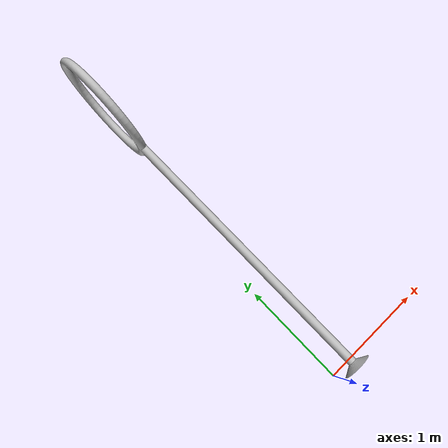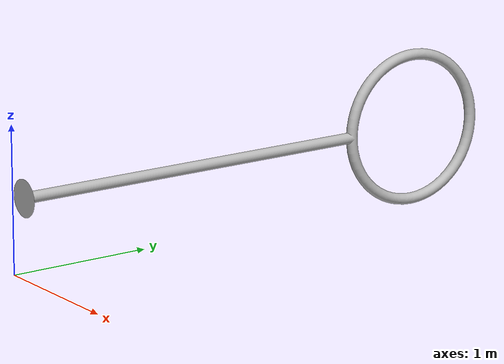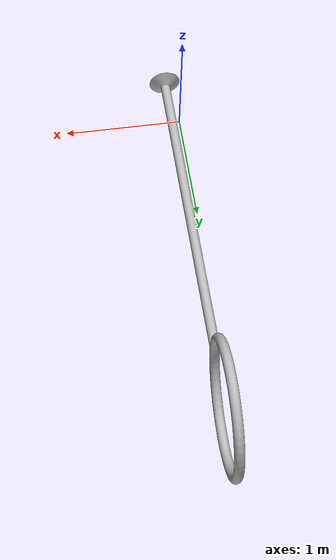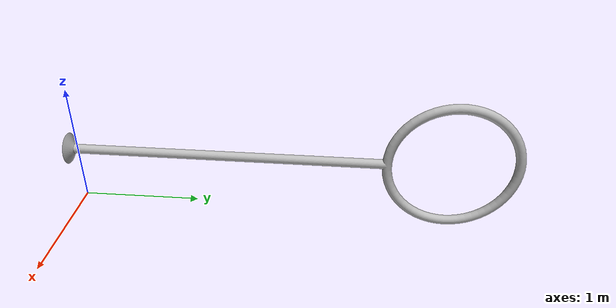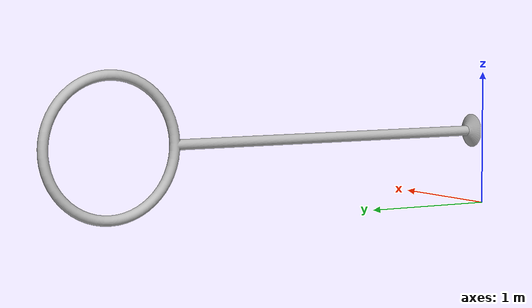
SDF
<?xml version='1.0'?>
<sdf version="1.5">
  <model name="hoop22">
    <pose>0 0 0 0 0 0</pose>
    <static>true</static>
    <link name="link">
     <collision name="collision">
        <geometry>
          <mesh>
		  <uri>model://hoop22/meshes/hoop22.STL</uri>
		  <scale>0.00254 0.00254 0.00254</scale>
	  </mesh>
	</geometry>
      </collision>
      <visual name="visual">
        <geometry>
          <mesh>
		  <uri>model://hoop22/meshes/hoop22.STL</uri>
<scale>0.00254 0.00254 0.00254</scale>
          </mesh>
        </geometry>
      </visual>
    </link>
  </model>
</sdf>
